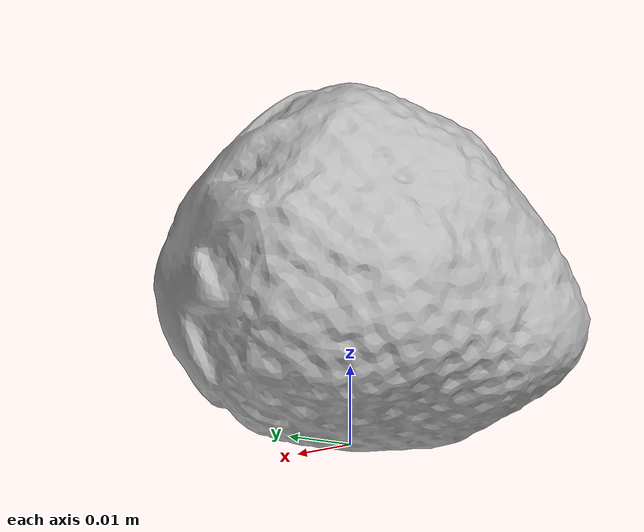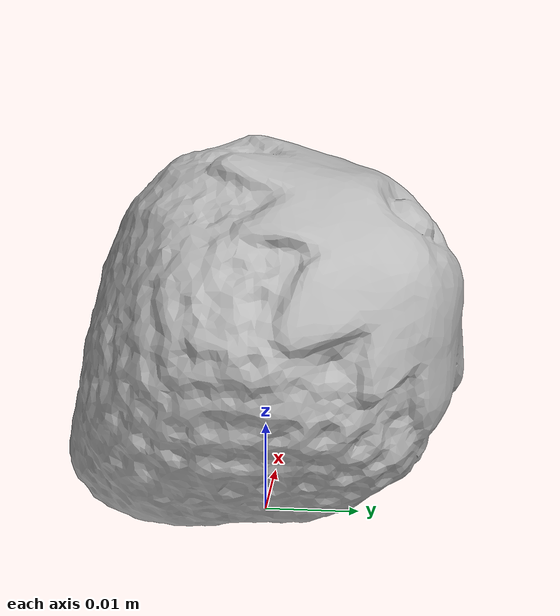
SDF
<?xml version="1.0" ?>
<sdf version='1.8'>
  <model name='ycb_012_strawberry'>
    <link name='body'>
      <inertial>
        <mass>0.018</mass>
        <pose>-0.000623872778 -0.000416320114 0.0211645033 0 0 0</pose>
        <inertia>
          <ixx>3.73097308073e-06</ixx>
          <ixy>-3.64236231046e-07</ixy>
          <ixz>-9.69512442571e-09</ixz>
          <iyy>3.8071871695e-06</iyy>
          <iyz>-1.11398280319e-07</iyz>
          <izz>3.76162292104e-06</izz>
        </inertia>
      </inertial>
      <visual name='ycb_012_strawberry_visual'>
        <pose>0.00087 -0.015849 5e-05 0 0 0</pose>
        <geometry>
          <mesh>
            <uri>model://ycb_012_strawberry/meshes/textured.dae</uri>
          </mesh>
        </geometry>
      </visual>
      <collision name='ycb_012_strawberry_collision'>
        <pose>0.00087 -0.015849 5e-05 0 0 0</pose>
        <geometry>
          <mesh>
            <uri>model://ycb_012_strawberry/meshes/nontextured.stl</uri>
          </mesh>
        </geometry>
        <max_contacts>10</max_contacts>
        <surface>
          <contact>
            <ode>
              <kp>1e15</kp>
              <kd>1e13</kd>
            </ode>
          </contact>
        </surface>
      </collision>
    </link>
  </model>
</sdf>
